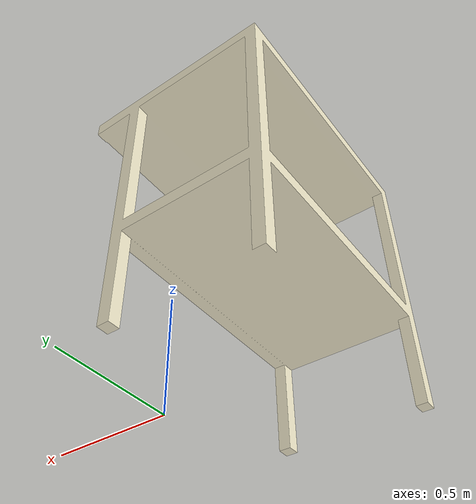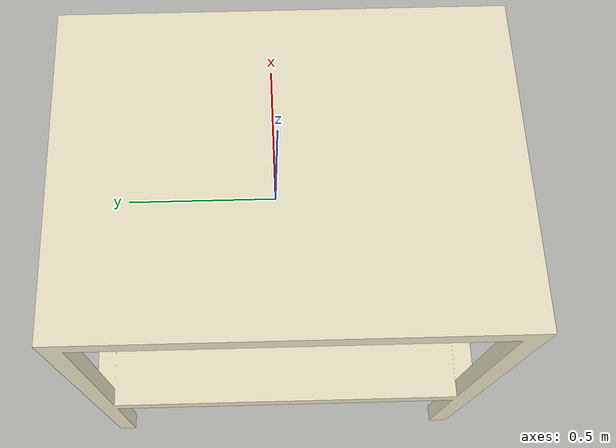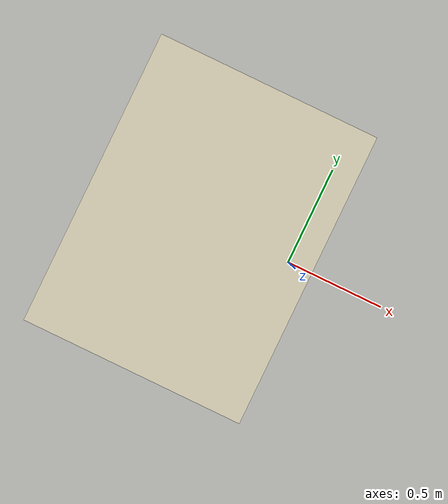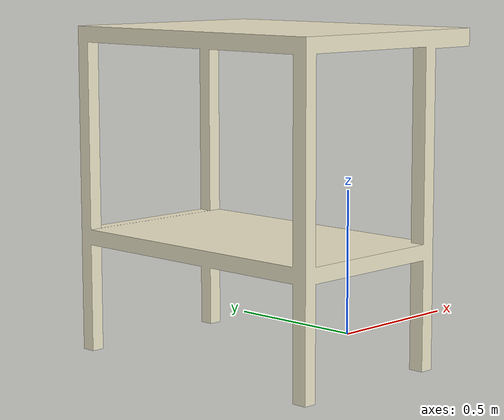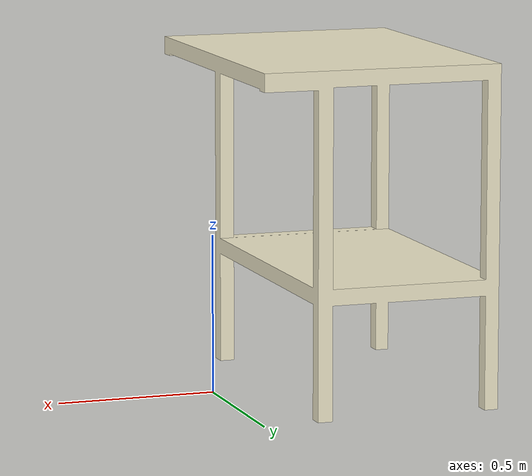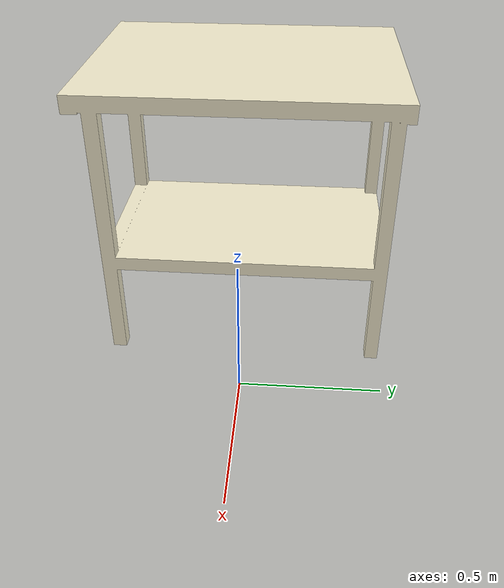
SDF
<?xml version="1.0"?>
<sdf version="1.9">
  <model name="robot_lab_table">
    <static>true</static>
    <link name="base_link">
      <visual name="visual">
        <geometry>
          <mesh>
            <uri>mesh/robot_lab_table.stl</uri>
          </mesh>
        </geometry>
        <material>
          <ambient>0.95 0.92 0.80 1</ambient>
          <diffuse>0.95 0.92 0.80 1</diffuse>
          <specular>0.3 0.3 0.28 1</specular>
          <emissive>0 0 0 1</emissive>
        </material>
      </visual>
      <collision name="collision">
        <geometry>
          <mesh>
            <uri>mesh/robot_lab_table.stl</uri>
          </mesh>
        </geometry>
        <surface>
          <friction>
            <ode>
              <mu>1.0</mu>
              <mu2>1.0</mu2>
            </ode>
            <torsional>
              <coefficient>1.0</coefficient>
            </torsional>
          </friction>
        </surface>
      </collision>
    </link>
  </model>
</sdf>
